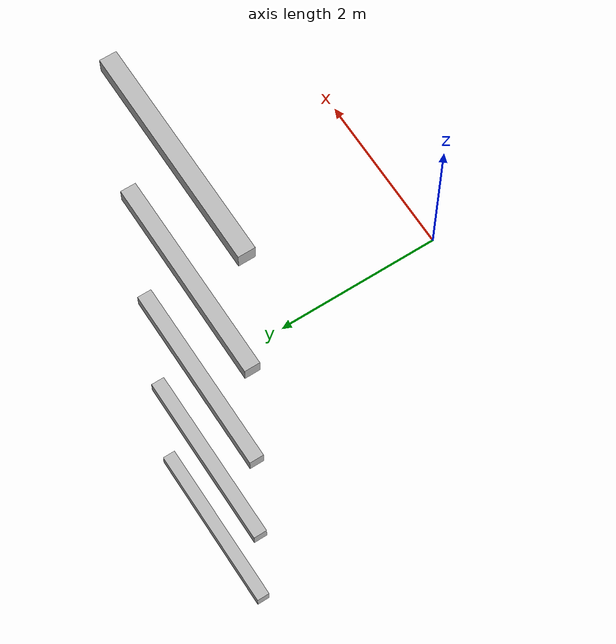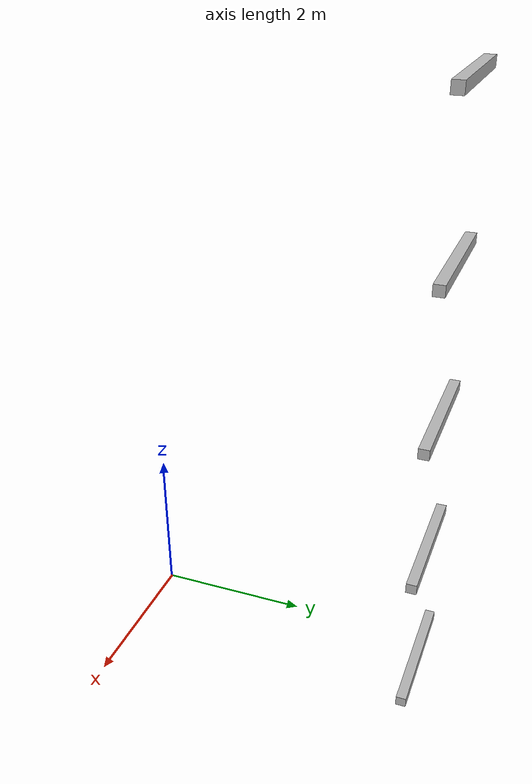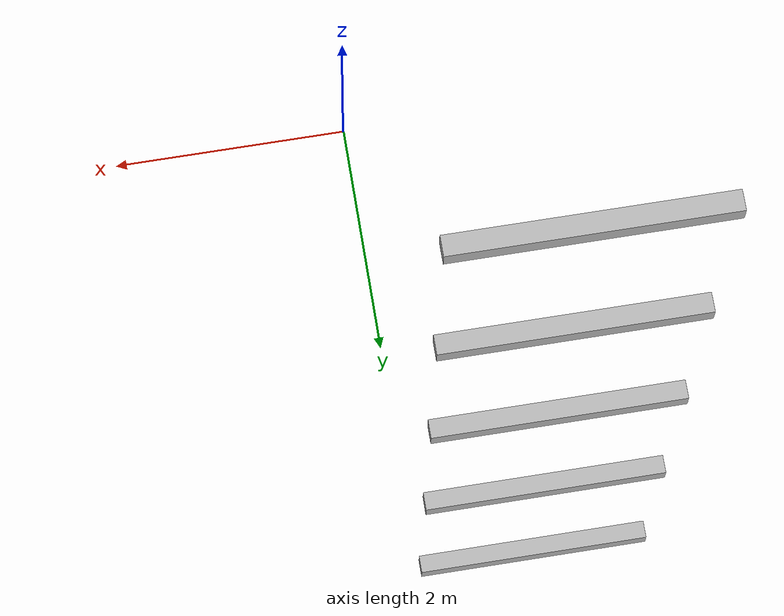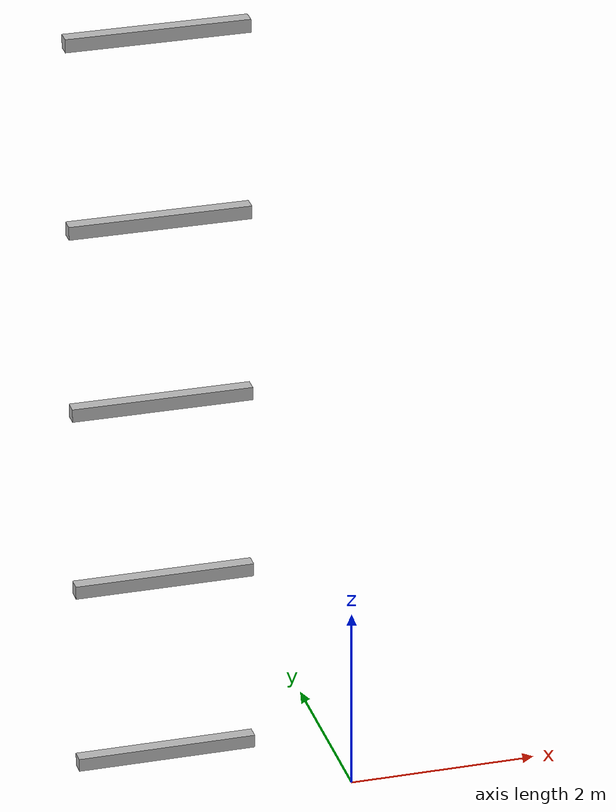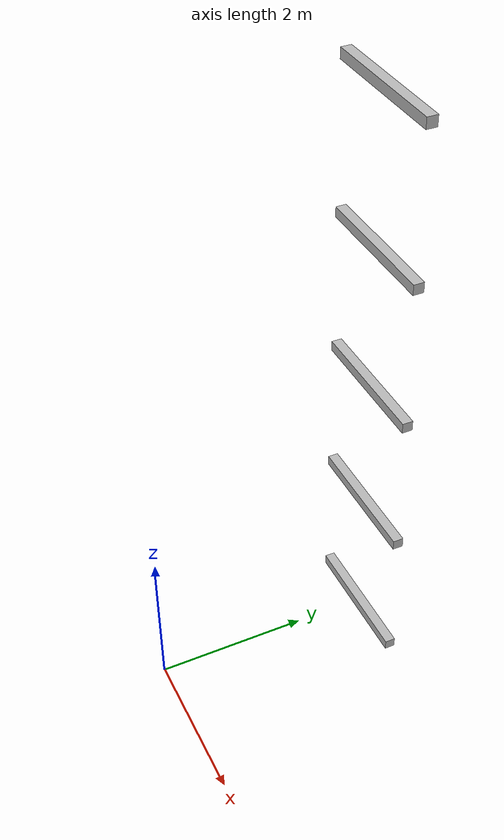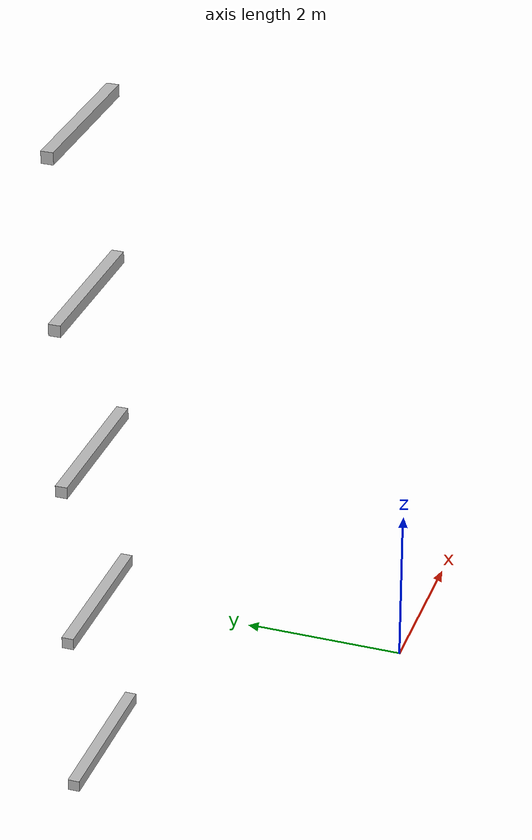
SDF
<sdf version="1.7">
 <world name="default">
  <model name="orthogonal_747_2.000.15_TS">
   <static>1</static>
   <link name="x_link_0_4_2">
    <inertial>
     <mass>1</mass>
     <inertia>
      <ixx>0.166667</ixx>
      <ixy>0</ixy>
      <ixz>0</ixz>
      <iyy>0.166667</iyy>
      <iyz>0</iyz>
      <izz>0.166667</izz>
     </inertia>
    </inertial>
    <pose>5.375 8.6 1.075 0 -0 0</pose>
    <visual name="visual_0">
     <laser_retro>673</laser_retro>
     <geometry><box><size>2 1e-06 0.15</size></box></geometry>
     <material>
      <script><name>Gazebo/Grey</name><uri>file://media/materials/scripts/gazebo.material</uri></script>
      <shader type="pixel"><normal_map>__default__</normal_map></shader>
      <ambient>0.678 0.498 0.659 1</ambient>
      <diffuse>0.7 0.7 0.7 1</diffuse>
      <specular>0.01 0.01 0.01 1</specular>
      <emissive>0 0 0 1</emissive>
     </material>
     <pose>0 -0.075 0 0 -0 0</pose>
     <transparency>1</transparency>
    </visual>
    <visual name="visual_1">
     <laser_retro>674</laser_retro>
     <geometry><box><size>2 1e-06 0.15</size></box></geometry>
     <material>
      <script><name>Gazebo/Grey</name><uri>file://media/materials/scripts/gazebo.material</uri></script>
      <shader type="pixel"><normal_map>__default__</normal_map></shader>
      <ambient>0.447 0.624 0.812 1</ambient>
      <diffuse>0.7 0.7 0.7 1</diffuse>
      <specular>0.01 0.01 0.01 1</specular>
      <emissive>0 0 0 1</emissive>
     </material>
     <pose>0 0.075 0 0 -0 0</pose>
     <transparency>1</transparency>
    </visual>
    <visual name="visual_2">
     <laser_retro>675</laser_retro>
     <geometry><box><size>2 0.15 1e-06</size></box></geometry>
     <material>
      <script><name>Gazebo/Grey</name><uri>file://media/materials/scripts/gazebo.material</uri></script>
      <shader type="pixel"><normal_map>__default__</normal_map></shader>
      <ambient>0.988 0.686 0.243 1</ambient>
      <diffuse>0.7 0.7 0.7 1</diffuse>
      <specular>0.01 0.01 0.01 1</specular>
      <emissive>0 0 0 1</emissive>
     </material>
     <pose>0 0 -0.075 0 -0 0</pose>
     <transparency>1</transparency>
    </visual>
    <visual name="visual_3">
     <laser_retro>676</laser_retro>
     <geometry><box><size>1e-06 0.15 0.15</size></box></geometry>
     <material>
      <script><name>Gazebo/Grey</name><uri>file://media/materials/scripts/gazebo.material</uri></script>
      <shader type="pixel"><normal_map>__default__</normal_map></shader>
      <ambient>0.988 0.914 0.31 1</ambient>
      <diffuse>0.7 0.7 0.7 1</diffuse>
      <specular>0.01 0.01 0.01 1</specular>
      <emissive>0 0 0 1</emissive>
     </material>
     <pose>1 0 0 0 -0 0</pose>
     <transparency>1</transparency>
    </visual>
    <visual name="visual_4">
     <laser_retro>677</laser_retro>
     <geometry><box><size>2 0.15 1e-06</size></box></geometry>
     <material>
      <script><name>Gazebo/Grey</name><uri>file://media/materials/scripts/gazebo.material</uri></script>
      <shader type="pixel"><normal_map>__default__</normal_map></shader>
      <ambient>0.937 0.161 0.161 1</ambient>
      <diffuse>0.7 0.7 0.7 1</diffuse>
      <specular>0.01 0.01 0.01 1</specular>
      <emissive>0 0 0 1</emissive>
     </material>
     <pose>0 0 0.075 0 -0 0</pose>
     <transparency>1</transparency>
    </visual>
    <visual name="visual_5">
     <laser_retro>678</laser_retro>
     <geometry><box><size>1e-06 0.15 0.15</size></box></geometry>
     <material>
      <script><name>Gazebo/Grey</name><uri>file://media/materials/scripts/gazebo.material</uri></script>
      <shader type="pixel"><normal_map>__default__</normal_map></shader>
      <ambient>0.541 0.886 0.204 1</ambient>
      <diffuse>0.7 0.7 0.7 1</diffuse>
      <specular>0.01 0.01 0.01 1</specular>
      <emissive>0 0 0 1</emissive>
     </material>
     <pose>-1 0 0 0 -0 0</pose>
     <transparency>1</transparency>
    </visual>
    <visual name="visual_texture">
     <geometry><box><size>1.9998 0.149985 0.149985</size></box></geometry>
     <material>
      <script>
       <uri>model://BASE_MODELS/simple_block_v2_textured/materials/scripts</uri>
       <uri>model://BASE_MODELS/simple_block_v2_textured/materials/textures</uri>
       <name>metal</name>
      </script>
     </material>
     <laser_retro>679</laser_retro>
    </visual>
    <collision name="collision">
     <geometry><box><size>2 0.15 0.15</size></box></geometry>
     <surface>
      <friction>
       <ode><mu>1</mu><mu2>1</mu2><fdir1>0 0 0</fdir1><slip1>0</slip1><slip2>0</slip2></ode>
       <torsional>
        <coefficient>1</coefficient>
        <patch_radius>0</patch_radius>
        <surface_radius>0</surface_radius>
        <use_patch_radius>1</use_patch_radius>
        <ode><slip>0</slip></ode>
       </torsional>
      </friction>
      <bounce><restitution_coefficient>0</restitution_coefficient><threshold>1e+06</threshold></bounce>
      <contact>
       <collide_without_contact>0</collide_without_contact>
       <collide_without_contact_bitmask>1</collide_without_contact_bitmask>
       <collide_bitmask>1</collide_bitmask>
       <ode>
        <soft_cfm>0</soft_cfm>
        <soft_erp>0.2</soft_erp>
        <kp>1e+13</kp>
        <kd>1</kd>
        <max_vel>0.01</max_vel>
        <min_depth>0</min_depth>
       </ode>
       <bullet>
        <split_impulse>1</split_impulse>
        <split_impulse_penetration_threshold>-0.01</split_impulse_penetration_threshold>
        <soft_cfm>0</soft_cfm>
        <soft_erp>0.2</soft_erp>
        <kp>1e+13</kp>
        <kd>1</kd>
       </bullet>
      </contact>
     </surface>
    </collision>
   </link>
   <link name="x_link_1_4_2">
    <inertial>
     <mass>1</mass>
     <inertia>
      <ixx>0.166667</ixx>
      <ixy>0</ixy>
      <ixz>0</ixz>
      <iyy>0.166667</iyy>
      <iyz>0</iyz>
      <izz>0.166667</izz>
     </inertia>
    </inertial>
    <pose>5.375 8.6 3.225 0 -0 0</pose>
    <visual name="visual_0">
     <laser_retro>1534</laser_retro>
     <geometry><box><size>2 1e-06 0.15</size></box></geometry>
     <material>
      <script><name>Gazebo/Grey</name><uri>file://media/materials/scripts/gazebo.material</uri></script>
      <shader type="pixel"><normal_map>__default__</normal_map></shader>
      <ambient>0.678 0.498 0.659 1</ambient>
      <diffuse>0.7 0.7 0.7 1</diffuse>
      <specular>0.01 0.01 0.01 1</specular>
      <emissive>0 0 0 1</emissive>
     </material>
     <pose>0 -0.075 0 0 -0 0</pose>
     <transparency>1</transparency>
    </visual>
    <visual name="visual_1">
     <laser_retro>1535</laser_retro>
     <geometry><box><size>2 1e-06 0.15</size></box></geometry>
     <material>
      <script><name>Gazebo/Grey</name><uri>file://media/materials/scripts/gazebo.material</uri></script>
      <shader type="pixel"><normal_map>__default__</normal_map></shader>
      <ambient>0.447 0.624 0.812 1</ambient>
      <diffuse>0.7 0.7 0.7 1</diffuse>
      <specular>0.01 0.01 0.01 1</specular>
      <emissive>0 0 0 1</emissive>
     </material>
     <pose>0 0.075 0 0 -0 0</pose>
     <transparency>1</transparency>
    </visual>
    <visual name="visual_2">
     <laser_retro>1536</laser_retro>
     <geometry><box><size>2 0.15 1e-06</size></box></geometry>
     <material>
      <script><name>Gazebo/Grey</name><uri>file://media/materials/scripts/gazebo.material</uri></script>
      <shader type="pixel"><normal_map>__default__</normal_map></shader>
      <ambient>0.988 0.686 0.243 1</ambient>
      <diffuse>0.7 0.7 0.7 1</diffuse>
      <specular>0.01 0.01 0.01 1</specular>
      <emissive>0 0 0 1</emissive>
     </material>
     <pose>0 0 -0.075 0 -0 0</pose>
     <transparency>1</transparency>
    </visual>
    <visual name="visual_3">
     <laser_retro>1537</laser_retro>
     <geometry><box><size>1e-06 0.15 0.15</size></box></geometry>
     <material>
      <script><name>Gazebo/Grey</name><uri>file://media/materials/scripts/gazebo.material</uri></script>
      <shader type="pixel"><normal_map>__default__</normal_map></shader>
      <ambient>0.988 0.914 0.31 1</ambient>
      <diffuse>0.7 0.7 0.7 1</diffuse>
      <specular>0.01 0.01 0.01 1</specular>
      <emissive>0 0 0 1</emissive>
     </material>
     <pose>1 0 0 0 -0 0</pose>
     <transparency>1</transparency>
    </visual>
    <visual name="visual_4">
     <laser_retro>1538</laser_retro>
     <geometry><box><size>2 0.15 1e-06</size></box></geometry>
     <material>
      <script><name>Gazebo/Grey</name><uri>file://media/materials/scripts/gazebo.material</uri></script>
      <shader type="pixel"><normal_map>__default__</normal_map></shader>
      <ambient>0.937 0.161 0.161 1</ambient>
      <diffuse>0.7 0.7 0.7 1</diffuse>
      <specular>0.01 0.01 0.01 1</specular>
      <emissive>0 0 0 1</emissive>
     </material>
     <pose>0 0 0.075 0 -0 0</pose>
     <transparency>1</transparency>
    </visual>
    <visual name="visual_5">
     <laser_retro>1539</laser_retro>
     <geometry><box><size>1e-06 0.15 0.15</size></box></geometry>
     <material>
      <script><name>Gazebo/Grey</name><uri>file://media/materials/scripts/gazebo.material</uri></script>
      <shader type="pixel"><normal_map>__default__</normal_map></shader>
      <ambient>0.541 0.886 0.204 1</ambient>
      <diffuse>0.7 0.7 0.7 1</diffuse>
      <specular>0.01 0.01 0.01 1</specular>
      <emissive>0 0 0 1</emissive>
     </material>
     <pose>-1 0 0 0 -0 0</pose>
     <transparency>1</transparency>
    </visual>
    <visual name="visual_texture">
     <geometry><box><size>1.9998 0.149985 0.149985</size></box></geometry>
     <material>
      <script>
       <uri>model://BASE_MODELS/simple_block_v2_textured/materials/scripts</uri>
       <uri>model://BASE_MODELS/simple_block_v2_textured/materials/textures</uri>
       <name>metal</name>
      </script>
     </material>
     <laser_retro>1540</laser_retro>
    </visual>
    <collision name="collision">
     <geometry><box><size>2 0.15 0.15</size></box></geometry>
     <surface>
      <friction>
       <ode><mu>1</mu><mu2>1</mu2><fdir1>0 0 0</fdir1><slip1>0</slip1><slip2>0</slip2></ode>
       <torsional>
        <coefficient>1</coefficient>
        <patch_radius>0</patch_radius>
        <surface_radius>0</surface_radius>
        <use_patch_radius>1</use_patch_radius>
        <ode><slip>0</slip></ode>
       </torsional>
      </friction>
      <bounce><restitution_coefficient>0</restitution_coefficient><threshold>1e+06</threshold></bounce>
      <contact>
       <collide_without_contact>0</collide_without_contact>
       <collide_without_contact_bitmask>1</collide_without_contact_bitmask>
       <collide_bitmask>1</collide_bitmask>
       <ode>
        <soft_cfm>0</soft_cfm>
        <soft_erp>0.2</soft_erp>
        <kp>1e+13</kp>
        <kd>1</kd>
        <max_vel>0.01</max_vel>
        <min_depth>0</min_depth>
       </ode>
       <bullet>
        <split_impulse>1</split_impulse>
        <split_impulse_penetration_threshold>-0.01</split_impulse_penetration_threshold>
        <soft_cfm>0</soft_cfm>
        <soft_erp>0.2</soft_erp>
        <kp>1e+13</kp>
        <kd>1</kd>
       </bullet>
      </contact>
     </surface>
    </collision>
   </link>
   <link name="x_link_2_4_2">
    <inertial>
     <mass>1</mass>
     <inertia>
      <ixx>0.166667</ixx>
      <ixy>0</ixy>
      <ixz>0</ixz>
      <iyy>0.166667</iyy>
      <iyz>0</iyz>
      <izz>0.166667</izz>
     </inertia>
    </inertial>
    <pose>5.375 8.6 5.375 0 -0 0</pose>
    <visual name="visual_0">
     <laser_retro>2437</laser_retro>
     <geometry><box><size>2 1e-06 0.15</size></box></geometry>
     <material>
      <script><name>Gazebo/Grey</name><uri>file://media/materials/scripts/gazebo.material</uri></script>
      <shader type="pixel"><normal_map>__default__</normal_map></shader>
      <ambient>0.678 0.498 0.659 1</ambient>
      <diffuse>0.7 0.7 0.7 1</diffuse>
      <specular>0.01 0.01 0.01 1</specular>
      <emissive>0 0 0 1</emissive>
     </material>
     <pose>0 -0.075 0 0 -0 0</pose>
     <transparency>1</transparency>
    </visual>
    <visual name="visual_1">
     <laser_retro>2438</laser_retro>
     <geometry><box><size>2 1e-06 0.15</size></box></geometry>
     <material>
      <script><name>Gazebo/Grey</name><uri>file://media/materials/scripts/gazebo.material</uri></script>
      <shader type="pixel"><normal_map>__default__</normal_map></shader>
      <ambient>0.447 0.624 0.812 1</ambient>
      <diffuse>0.7 0.7 0.7 1</diffuse>
      <specular>0.01 0.01 0.01 1</specular>
      <emissive>0 0 0 1</emissive>
     </material>
     <pose>0 0.075 0 0 -0 0</pose>
     <transparency>1</transparency>
    </visual>
    <visual name="visual_2">
     <laser_retro>2439</laser_retro>
     <geometry><box><size>2 0.15 1e-06</size></box></geometry>
     <material>
      <script><name>Gazebo/Grey</name><uri>file://media/materials/scripts/gazebo.material</uri></script>
      <shader type="pixel"><normal_map>__default__</normal_map></shader>
      <ambient>0.988 0.686 0.243 1</ambient>
      <diffuse>0.7 0.7 0.7 1</diffuse>
      <specular>0.01 0.01 0.01 1</specular>
      <emissive>0 0 0 1</emissive>
     </material>
     <pose>0 0 -0.075 0 -0 0</pose>
     <transparency>1</transparency>
    </visual>
    <visual name="visual_3">
     <laser_retro>2440</laser_retro>
     <geometry><box><size>1e-06 0.15 0.15</size></box></geometry>
     <material>
      <script><name>Gazebo/Grey</name><uri>file://media/materials/scripts/gazebo.material</uri></script>
      <shader type="pixel"><normal_map>__default__</normal_map></shader>
      <ambient>0.988 0.914 0.31 1</ambient>
      <diffuse>0.7 0.7 0.7 1</diffuse>
      <specular>0.01 0.01 0.01 1</specular>
      <emissive>0 0 0 1</emissive>
     </material>
     <pose>1 0 0 0 -0 0</pose>
     <transparency>1</transparency>
    </visual>
    <visual name="visual_4">
     <laser_retro>2441</laser_retro>
     <geometry><box><size>2 0.15 1e-06</size></box></geometry>
     <material>
      <script><name>Gazebo/Grey</name><uri>file://media/materials/scripts/gazebo.material</uri></script>
      <shader type="pixel"><normal_map>__default__</normal_map></shader>
      <ambient>0.937 0.161 0.161 1</ambient>
      <diffuse>0.7 0.7 0.7 1</diffuse>
      <specular>0.01 0.01 0.01 1</specular>
      <emissive>0 0 0 1</emissive>
     </material>
     <pose>0 0 0.075 0 -0 0</pose>
     <transparency>1</transparency>
    </visual>
    <visual name="visual_5">
     <laser_retro>2442</laser_retro>
     <geometry><box><size>1e-06 0.15 0.15</size></box></geometry>
     <material>
      <script><name>Gazebo/Grey</name><uri>file://media/materials/scripts/gazebo.material</uri></script>
      <shader type="pixel"><normal_map>__default__</normal_map></shader>
      <ambient>0.541 0.886 0.204 1</ambient>
      <diffuse>0.7 0.7 0.7 1</diffuse>
      <specular>0.01 0.01 0.01 1</specular>
      <emissive>0 0 0 1</emissive>
     </material>
     <pose>-1 0 0 0 -0 0</pose>
     <transparency>1</transparency>
    </visual>
    <visual name="visual_texture">
     <geometry><box><size>1.9998 0.149985 0.149985</size></box></geometry>
     <material>
      <script>
       <uri>model://BASE_MODELS/simple_block_v2_textured/materials/scripts</uri>
       <uri>model://BASE_MODELS/simple_block_v2_textured/materials/textures</uri>
       <name>metal</name>
      </script>
     </material>
     <laser_retro>2443</laser_retro>
    </visual>
    <collision name="collision">
     <geometry><box><size>2 0.15 0.15</size></box></geometry>
     <surface>
      <friction>
       <ode><mu>1</mu><mu2>1</mu2><fdir1>0 0 0</fdir1><slip1>0</slip1><slip2>0</slip2></ode>
       <torsional>
        <coefficient>1</coefficient>
        <patch_radius>0</patch_radius>
        <surface_radius>0</surface_radius>
        <use_patch_radius>1</use_patch_radius>
        <ode><slip>0</slip></ode>
       </torsional>
      </friction>
      <bounce><restitution_coefficient>0</restitution_coefficient><threshold>1e+06</threshold></bounce>
      <contact>
       <collide_without_contact>0</collide_without_contact>
       <collide_without_contact_bitmask>1</collide_without_contact_bitmask>
       <collide_bitmask>1</collide_bitmask>
       <ode>
        <soft_cfm>0</soft_cfm>
        <soft_erp>0.2</soft_erp>
        <kp>1e+13</kp>
        <kd>1</kd>
        <max_vel>0.01</max_vel>
        <min_depth>0</min_depth>
       </ode>
       <bullet>
        <split_impulse>1</split_impulse>
        <split_impulse_penetration_threshold>-0.01</split_impulse_penetration_threshold>
        <soft_cfm>0</soft_cfm>
        <soft_erp>0.2</soft_erp>
        <kp>1e+13</kp>
        <kd>1</kd>
       </bullet>
      </contact>
     </surface>
    </collision>
   </link>
   <link name="x_link_3_4_2">
    <inertial>
     <mass>1</mass>
     <inertia>
      <ixx>0.166667</ixx>
      <ixy>0</ixy>
      <ixz>0</ixz>
      <iyy>0.166667</iyy>
      <iyz>0</iyz>
      <izz>0.166667</izz>
     </inertia>
    </inertial>
    <pose>5.375 8.6 7.525 0 -0 0</pose>
    <visual name="visual_0">
     <laser_retro>3340</laser_retro>
     <geometry><box><size>2 1e-06 0.15</size></box></geometry>
     <material>
      <script><name>Gazebo/Grey</name><uri>file://media/materials/scripts/gazebo.material</uri></script>
      <shader type="pixel"><normal_map>__default__</normal_map></shader>
      <ambient>0.678 0.498 0.659 1</ambient>
      <diffuse>0.7 0.7 0.7 1</diffuse>
      <specular>0.01 0.01 0.01 1</specular>
      <emissive>0 0 0 1</emissive>
     </material>
     <pose>0 -0.075 0 0 -0 0</pose>
     <transparency>1</transparency>
    </visual>
    <visual name="visual_1">
     <laser_retro>3341</laser_retro>
     <geometry><box><size>2 1e-06 0.15</size></box></geometry>
     <material>
      <script><name>Gazebo/Grey</name><uri>file://media/materials/scripts/gazebo.material</uri></script>
      <shader type="pixel"><normal_map>__default__</normal_map></shader>
      <ambient>0.447 0.624 0.812 1</ambient>
      <diffuse>0.7 0.7 0.7 1</diffuse>
      <specular>0.01 0.01 0.01 1</specular>
      <emissive>0 0 0 1</emissive>
     </material>
     <pose>0 0.075 0 0 -0 0</pose>
     <transparency>1</transparency>
    </visual>
    <visual name="visual_2">
     <laser_retro>3342</laser_retro>
     <geometry><box><size>2 0.15 1e-06</size></box></geometry>
     <material>
      <script><name>Gazebo/Grey</name><uri>file://media/materials/scripts/gazebo.material</uri></script>
      <shader type="pixel"><normal_map>__default__</normal_map></shader>
      <ambient>0.988 0.686 0.243 1</ambient>
      <diffuse>0.7 0.7 0.7 1</diffuse>
      <specular>0.01 0.01 0.01 1</specular>
      <emissive>0 0 0 1</emissive>
     </material>
     <pose>0 0 -0.075 0 -0 0</pose>
     <transparency>1</transparency>
    </visual>
    <visual name="visual_3">
     <laser_retro>3343</laser_retro>
     <geometry><box><size>1e-06 0.15 0.15</size></box></geometry>
     <material>
      <script><name>Gazebo/Grey</name><uri>file://media/materials/scripts/gazebo.material</uri></script>
      <shader type="pixel"><normal_map>__default__</normal_map></shader>
      <ambient>0.988 0.914 0.31 1</ambient>
      <diffuse>0.7 0.7 0.7 1</diffuse>
      <specular>0.01 0.01 0.01 1</specular>
      <emissive>0 0 0 1</emissive>
     </material>
     <pose>1 0 0 0 -0 0</pose>
     <transparency>1</transparency>
    </visual>
    <visual name="visual_4">
     <laser_retro>3344</laser_retro>
     <geometry><box><size>2 0.15 1e-06</size></box></geometry>
     <material>
      <script><name>Gazebo/Grey</name><uri>file://media/materials/scripts/gazebo.material</uri></script>
      <shader type="pixel"><normal_map>__default__</normal_map></shader>
      <ambient>0.937 0.161 0.161 1</ambient>
      <diffuse>0.7 0.7 0.7 1</diffuse>
      <specular>0.01 0.01 0.01 1</specular>
      <emissive>0 0 0 1</emissive>
     </material>
     <pose>0 0 0.075 0 -0 0</pose>
     <transparency>1</transparency>
    </visual>
    <visual name="visual_5">
     <laser_retro>3345</laser_retro>
     <geometry><box><size>1e-06 0.15 0.15</size></box></geometry>
     <material>
      <script><name>Gazebo/Grey</name><uri>file://media/materials/scripts/gazebo.material</uri></script>
      <shader type="pixel"><normal_map>__default__</normal_map></shader>
      <ambient>0.541 0.886 0.204 1</ambient>
      <diffuse>0.7 0.7 0.7 1</diffuse>
      <specular>0.01 0.01 0.01 1</specular>
      <emissive>0 0 0 1</emissive>
     </material>
     <pose>-1 0 0 0 -0 0</pose>
     <transparency>1</transparency>
    </visual>
    <visual name="visual_texture">
     <geometry><box><size>1.9998 0.149985 0.149985</size></box></geometry>
     <material>
      <script>
       <uri>model://BASE_MODELS/simple_block_v2_textured/materials/scripts</uri>
       <uri>model://BASE_MODELS/simple_block_v2_textured/materials/textures</uri>
       <name>metal</name>
      </script>
     </material>
     <laser_retro>3346</laser_retro>
    </visual>
    <collision name="collision">
     <geometry><box><size>2 0.15 0.15</size></box></geometry>
     <surface>
      <friction>
       <ode><mu>1</mu><mu2>1</mu2><fdir1>0 0 0</fdir1><slip1>0</slip1><slip2>0</slip2></ode>
       <torsional>
        <coefficient>1</coefficient>
        <patch_radius>0</patch_radius>
        <surface_radius>0</surface_radius>
        <use_patch_radius>1</use_patch_radius>
        <ode><slip>0</slip></ode>
       </torsional>
      </friction>
      <bounce><restitution_coefficient>0</restitution_coefficient><threshold>1e+06</threshold></bounce>
      <contact>
       <collide_without_contact>0</collide_without_contact>
       <collide_without_contact_bitmask>1</collide_without_contact_bitmask>
       <collide_bitmask>1</collide_bitmask>
       <ode>
        <soft_cfm>0</soft_cfm>
        <soft_erp>0.2</soft_erp>
        <kp>1e+13</kp>
        <kd>1</kd>
        <max_vel>0.01</max_vel>
        <min_depth>0</min_depth>
       </ode>
       <bullet>
        <split_impulse>1</split_impulse>
        <split_impulse_penetration_threshold>-0.01</split_impulse_penetration_threshold>
        <soft_cfm>0</soft_cfm>
        <soft_erp>0.2</soft_erp>
        <kp>1e+13</kp>
        <kd>1</kd>
       </bullet>
      </contact>
     </surface>
    </collision>
   </link>
   <link name="x_link_4_4_2">
    <inertial>
     <mass>1</mass>
     <inertia>
      <ixx>0.166667</ixx>
      <ixy>0</ixy>
      <ixz>0</ixz>
      <iyy>0.166667</iyy>
      <iyz>0</iyz>
      <izz>0.166667</izz>
     </inertia>
    </inertial>
    <pose>5.375 8.6 9.675 0 -0 0</pose>
    <visual name="visual_0">
     <laser_retro>4243</laser_retro>
     <geometry><box><size>2 1e-06 0.15</size></box></geometry>
     <material>
      <script><name>Gazebo/Grey</name><uri>file://media/materials/scripts/gazebo.material</uri></script>
      <shader type="pixel"><normal_map>__default__</normal_map></shader>
      <ambient>0.678 0.498 0.659 1</ambient>
      <diffuse>0.7 0.7 0.7 1</diffuse>
      <specular>0.01 0.01 0.01 1</specular>
      <emissive>0 0 0 1</emissive>
     </material>
     <pose>0 -0.075 0 0 -0 0</pose>
     <transparency>1</transparency>
    </visual>
    <visual name="visual_1">
     <laser_retro>4244</laser_retro>
     <geometry><box><size>2 1e-06 0.15</size></box></geometry>
     <material>
      <script><name>Gazebo/Grey</name><uri>file://media/materials/scripts/gazebo.material</uri></script>
      <shader type="pixel"><normal_map>__default__</normal_map></shader>
      <ambient>0.447 0.624 0.812 1</ambient>
      <diffuse>0.7 0.7 0.7 1</diffuse>
      <specular>0.01 0.01 0.01 1</specular>
      <emissive>0 0 0 1</emissive>
     </material>
     <pose>0 0.075 0 0 -0 0</pose>
     <transparency>1</transparency>
    </visual>
    <visual name="visual_2">
     <laser_retro>4245</laser_retro>
     <geometry><box><size>2 0.15 1e-06</size></box></geometry>
     <material>
      <script><name>Gazebo/Grey</name><uri>file://media/materials/scripts/gazebo.material</uri></script>
      <shader type="pixel"><normal_map>__default__</normal_map></shader>
      <ambient>0.988 0.686 0.243 1</ambient>
      <diffuse>0.7 0.7 0.7 1</diffuse>
      <specular>0.01 0.01 0.01 1</specular>
      <emissive>0 0 0 1</emissive>
     </material>
     <pose>0 0 -0.075 0 -0 0</pose>
     <transparency>1</transparency>
    </visual>
    <visual name="visual_3">
     <laser_retro>4246</laser_retro>
     <geometry><box><size>1e-06 0.15 0.15</size></box></geometry>
     <material>
      <script><name>Gazebo/Grey</name><uri>file://media/materials/scripts/gazebo.material</uri></script>
      <shader type="pixel"><normal_map>__default__</normal_map></shader>
      <ambient>0.988 0.914 0.31 1</ambient>
      <diffuse>0.7 0.7 0.7 1</diffuse>
      <specular>0.01 0.01 0.01 1</specular>
      <emissive>0 0 0 1</emissive>
     </material>
     <pose>1 0 0 0 -0 0</pose>
     <transparency>1</transparency>
    </visual>
    <visual name="visual_4">
     <laser_retro>4247</laser_retro>
     <geometry><box><size>2 0.15 1e-06</size></box></geometry>
     <material>
      <script><name>Gazebo/Grey</name><uri>file://media/materials/scripts/gazebo.material</uri></script>
      <shader type="pixel"><normal_map>__default__</normal_map></shader>
      <ambient>0.937 0.161 0.161 1</ambient>
      <diffuse>0.7 0.7 0.7 1</diffuse>
      <specular>0.01 0.01 0.01 1</specular>
      <emissive>0 0 0 1</emissive>
     </material>
     <pose>0 0 0.075 0 -0 0</pose>
     <transparency>1</transparency>
    </visual>
    <visual name="visual_5">
     <laser_retro>4248</laser_retro>
     <geometry><box><size>1e-06 0.15 0.15</size></box></geometry>
     <material>
      <script><name>Gazebo/Grey</name><uri>file://media/materials/scripts/gazebo.material</uri></script>
      <shader type="pixel"><normal_map>__default__</normal_map></shader>
      <ambient>0.541 0.886 0.204 1</ambient>
      <diffuse>0.7 0.7 0.7 1</diffuse>
      <specular>0.01 0.01 0.01 1</specular>
      <emissive>0 0 0 1</emissive>
     </material>
     <pose>-1 0 0 0 -0 0</pose>
     <transparency>1</transparency>
    </visual>
    <visual name="visual_texture">
     <geometry><box><size>1.9998 0.149985 0.149985</size></box></geometry>
     <material>
      <script>
       <uri>model://BASE_MODELS/simple_block_v2_textured/materials/scripts</uri>
       <uri>model://BASE_MODELS/simple_block_v2_textured/materials/textures</uri>
       <name>metal</name>
      </script>
     </material>
     <laser_retro>4249</laser_retro>
    </visual>
    <collision name="collision">
     <geometry><box><size>2 0.15 0.15</size></box></geometry>
     <surface>
      <friction>
       <ode><mu>1</mu><mu2>1</mu2><fdir1>0 0 0</fdir1><slip1>0</slip1><slip2>0</slip2></ode>
       <torsional>
        <coefficient>1</coefficient>
        <patch_radius>0</patch_radius>
        <surface_radius>0</surface_radius>
        <use_patch_radius>1</use_patch_radius>
        <ode><slip>0</slip></ode>
       </torsional>
      </friction>
      <bounce><restitution_coefficient>0</restitution_coefficient><threshold>1e+06</threshold></bounce>
      <contact>
       <collide_without_contact>0</collide_without_contact>
       <collide_without_contact_bitmask>1</collide_without_contact_bitmask>
       <collide_bitmask>1</collide_bitmask>
       <ode>
        <soft_cfm>0</soft_cfm>
        <soft_erp>0.2</soft_erp>
        <kp>1e+13</kp>
        <kd>1</kd>
        <max_vel>0.01</max_vel>
        <min_depth>0</min_depth>
       </ode>
       <bullet>
        <split_impulse>1</split_impulse>
        <split_impulse_penetration_threshold>-0.01</split_impulse_penetration_threshold>
        <soft_cfm>0</soft_cfm>
        <soft_erp>0.2</soft_erp>
        <kp>1e+13</kp>
        <kd>1</kd>
       </bullet>
      </contact>
     </surface>
    </collision>
   </link>
   <pose>-6.47624 -5 -2.5 0 -0 0</pose>
  </model>
 </world>
</sdf>
